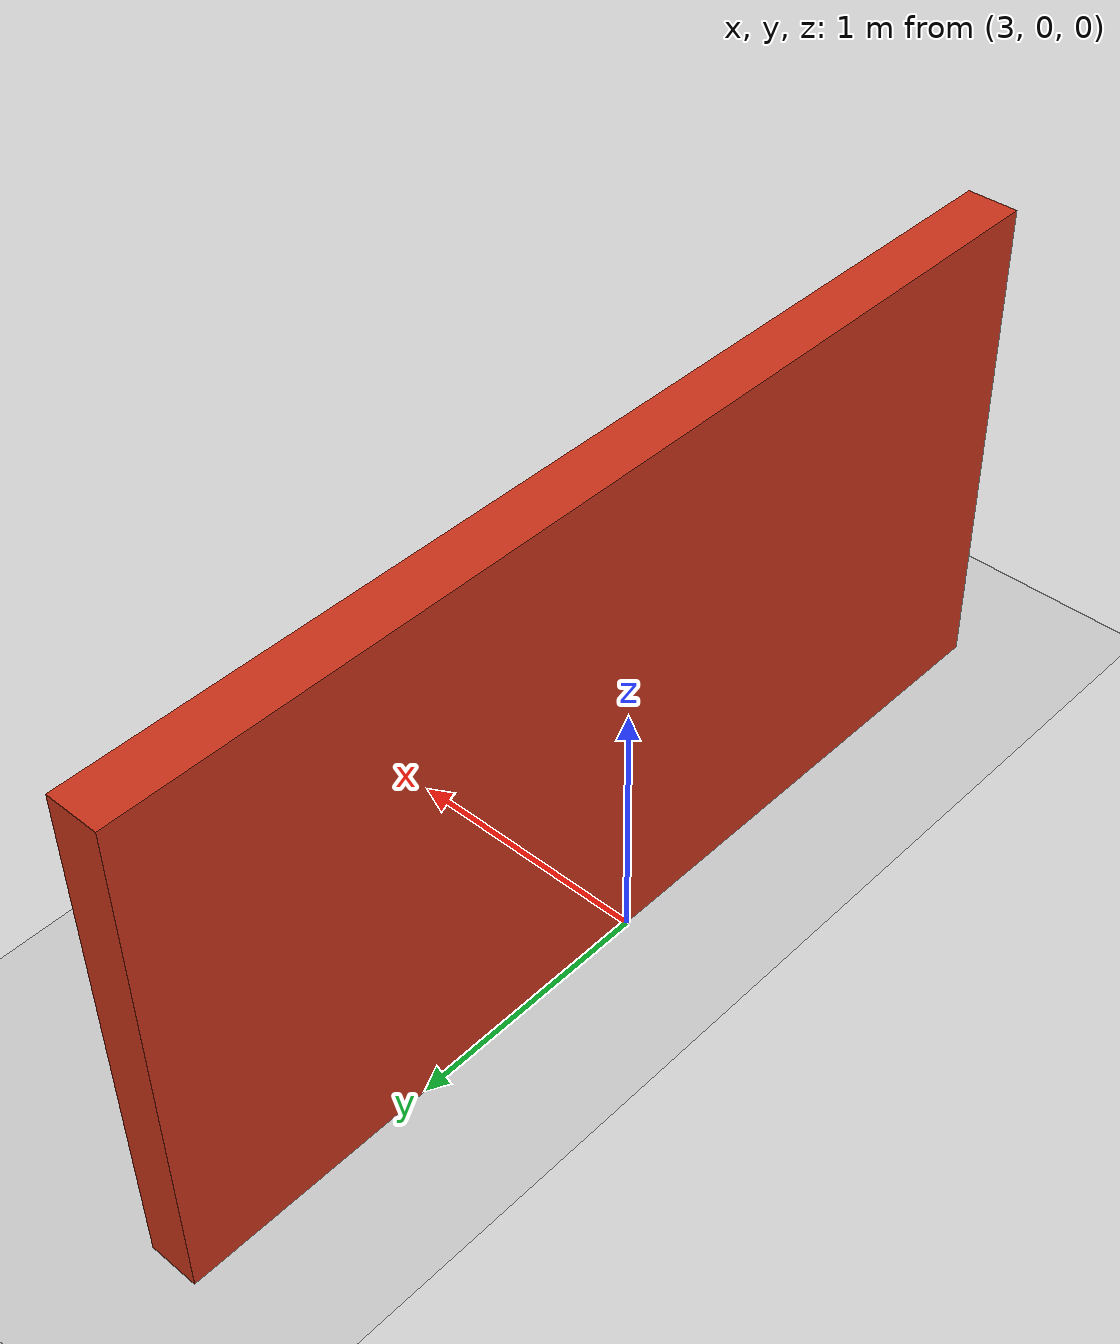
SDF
<?xml version="1.0"?>
<sdf version="1.8">
  <world name="line_track">
    <physics name="1ms" type="ignored"><max_step_size>0.001</max_step_size><real_time_factor>1</real_time_factor></physics>
    <plugin filename="gz-sim-physics-system" name="gz::sim::systems::Physics"/>
    <plugin filename="gz-sim-imu-system" name="gz::sim::systems::Imu"/>
    <plugin filename="gz-sim-user-commands-system" name="gz::sim::systems::UserCommands"/>
    <plugin filename="gz-sim-scene-broadcaster-system" name="gz::sim::systems::SceneBroadcaster"/>
    <plugin filename="gz-sim-sensors-system" name="gz::sim::systems::Sensors"><render_engine>ogre2</render_engine></plugin>
    <light type="directional" name="sun"><pose>0 0 8 0 0 0</pose><diffuse>1 1 1 1</diffuse><direction>-0.5 0.1 -1</direction></light>
    <model name="ground"><static>true</static><link name="link">
      <collision name="collision"><geometry><plane><normal>0 0 1</normal><size>30 30</size></plane></geometry></collision>
      <visual name="visual"><geometry><plane><normal>0 0 1</normal><size>30 30</size></plane></geometry></visual>
    </link></model>
    <!-- 车体原点设为 0；靶板近表面位于 x=3 m。 -->
    <model name="target"><static>true</static><pose>3.1 0 1 0 0 0</pose><link name="link">
      <collision name="collision"><geometry><box><size>0.2 4 2</size></box></geometry></collision>
      <visual name="visual"><geometry><box><size>0.2 4 2</size></box></geometry><material><ambient>0.8 0.2 0.1 1</ambient><diffuse>0.8 0.2 0.1 1</diffuse></material></visual>
    </link></model>
  </world>
</sdf>
